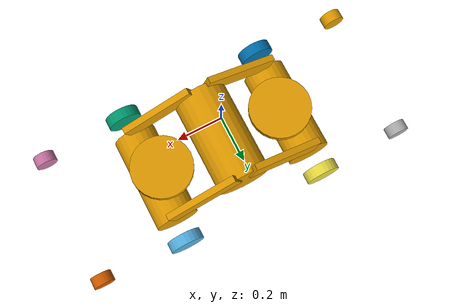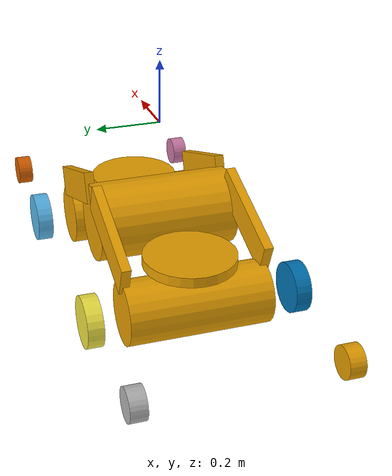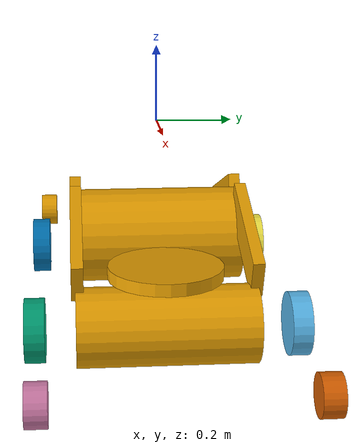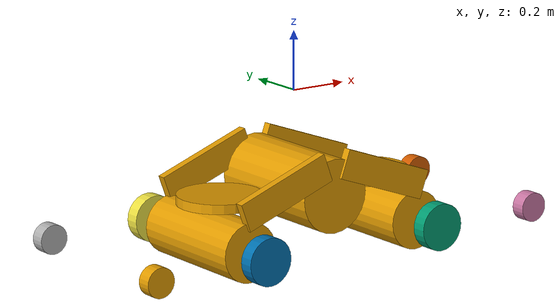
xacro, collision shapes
<?xml version="1.0"?>
<robot xmlns:xacro="http://www.ros.org/wiki/xacro" name="viv">

    <!-- Arguments -->
    <xacro:arg name="robot_namespace" default="/" />

    <xacro:arg name="sim" default="false" />
    <xacro:property name="sim" value="$(arg sim)" />
    <xacro:arg name="spawn_d435" default="false" />
    <xacro:arg name="spawn_velodyne" default="false" />
    <xacro:property name="spawn_d435" value="$(arg spawn_d435)" />
    <xacro:property name="spawn_velodyne" value="$(arg spawn_velodyne)" />

    <xacro:include filename="$(find viv_description)/urdf/viv_description_no_ros_control.urdf.xacro" />

    <xacro:if value="${sim}">
      <gazebo>
        <plugin name="gazebo_ros_control" filename="libgazebo_ros_control.so">
          <robotNamespace>$(arg robot_namespace)</robotNamespace>
        </plugin>
      </gazebo>
    </xacro:if>

    <xacro:if value="${spawn_d435}">
      <xacro:include filename="$(find d435_description)/urdf/d435.xacro" />

      <joint name="front_camera_joint" type="fixed">
        <parent link="viv_base"/>
        <child link="camera_link"/>
        <origin xyz="${-0.23 + 0.6} 0.2 0.35" rpy="0 0 ${pi/2}" />
      </joint>

      <link name="camera_holder_link"/>

      <joint name="camera_holder_joint" type="fixed">
        <parent link="viv_base"/>
        <child link="camera_holder_link"/>
        <origin xyz="0.0 0.0 0.1" rpy="0 0 0" />
      </joint>
    </xacro:if>

    <xacro:if value="${spawn_velodyne}">
      <xacro:include filename="$(find velodyne_description)/urdf/VLP-16.urdf.xacro" />
      <xacro:VLP-16 parent="viv_base" name="/rslidar" topic="/rslidar_points" hz="10" samples="440" gpu="false">
        <origin xyz="0 0 0.4" rpy="0 0 0" />
      </xacro:VLP-16>

    </xacro:if>
</robot>

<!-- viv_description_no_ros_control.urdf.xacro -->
<robot xmlns:xacro="http://www.ros.org/wiki/xacro" name="viv">
    <xacro:property name="M_PI" value="3.1415926535897931" />

    <xacro:arg name="robot_namespace" default="/" />
    <xacro:arg name="sim" default="true" />
    <xacro:property name="sim" value="$(arg sim)" />
    <xacro:arg name="spawn_d435" default="true" />
    <xacro:property name="spawn_d435" value="$(arg spawn_d435)" />
    <!--xacro:property name="wheel_radius" value="1" /-->

    <xacro:if value="${sim}">
      <xacro:property name="wheel_radius" value="0.14" />
    </xacro:if>
    <xacro:unless value="${sim}">
      <xacro:property name="wheel_radius" value="0.08" />
    </xacro:unless>

    <link name="viv_base" >
      <visual>
        <origin xyz="0.0 0 -0.05" rpy="0 0 0" />
        <geometry>
          <mesh filename="package://viv_description/meshes/viv_new_model.dae" />
        </geometry>
      </visual>

      <!-- collisions -->

      <!--three main cylinders-->
      <collision>
        <origin xyz="0.34 0 0.1" rpy="1.57079 0 0" />
        <geometry>
          <cylinder radius="0.1" length="0.45"/>
        </geometry>
      </collision>
      <collision>
        <origin xyz="-0.34 0 0.1" rpy="1.57079 0 0" />
        <geometry>
          <cylinder radius="0.1" length="0.45"/>
        </geometry>
      </collision>
      <collision>
        <origin xyz="0 0 0.235" rpy="1.57079 0 0" />
        <geometry>
          <cylinder radius="0.125" length="0.45"/>
        </geometry>
      </collision>
      <!--mounting cylinders-->
      <collision>
        <origin xyz="-0.3 0 0.228" rpy="0 0 0" />
        <geometry>
          <cylinder radius="0.145" length="0.032"/>
        </geometry>
      </collision>
      <collision>
        <origin xyz="0.3 0 0.228" rpy="0 0 0" />
        <geometry>
          <cylinder radius="0.145" length="0.032"/>
        </geometry>
      </collision>
      <!--side bars-->
      <collision>
        <origin xyz="0.2 -0.22 0.28" rpy="1.57079 0.349 0" />
        <geometry>
          <box size="0.35 0.1 0.03"/>
        </geometry>
      </collision>
      <collision>
        <origin xyz="0.2 0.22 0.28" rpy="1.57079 0.349 0" />
        <geometry>
          <box size="0.35 0.1 0.03"/>
        </geometry>
      </collision>
      <collision>
        <origin xyz="-0.2 -0.22 0.28" rpy="1.57079 -0.349 0" />
        <geometry>
          <box size="0.35 0.1 0.03"/>
        </geometry>
      </collision>
      <collision>
        <origin xyz="-0.2 0.22 0.28" rpy="1.57079 -0.349 0" />
        <geometry>
          <box size="0.35 0.1 0.03"/>
        </geometry>
      </collision>

      <inertial>
        <origin xyz="0 0 0.2"/>
        <mass value="50"/>
        <inertia ixx="1.0" ixy="0.0" ixz="0.0"
                iyy="1.0" iyz="0.0"
                izz="1.0" />
      </inertial>
    </link>

    <!--wheels-->
    <link name="viv_wheel_front_left" >
      <collision>
        <origin xyz="0.0 0.0 0.0" rpy="1.57079 0 0" />
        <geometry>
          <cylinder radius="${wheel_radius}" length="0.05"/>
        </geometry>
      </collision>
      <inertial>
        <origin xyz="0 0 0"/>
        <mass value="10"/>
        <inertia ixx="1.0" ixy="0.0" ixz="0.0"
                iyy="1.0" iyz="0.0"
                izz="1.0" />
      </inertial>
    </link>

    <link name="viv_wheel_front_right" >
      <collision>
        <origin xyz="0.0 0.0 0.0" rpy="1.57079 0 0" />
        <geometry>
          <cylinder radius="${wheel_radius}" length="0.05"/>
        </geometry>
      </collision>
      <inertial>
        <origin xyz="0 0 0"/>
        <mass value="10"/>
        <inertia ixx="1.0" ixy="0.0" ixz="0.0"
                iyy="1.0" iyz="0.0"
                izz="1.0" />
      </inertial>
    </link>

     <link name="viv_wheel_rear_left" >
      <collision>
        <origin xyz="0.0 0.0 0.0" rpy="1.57079 0 0" />
        <geometry>
          <cylinder radius="${wheel_radius}" length="0.05"/>
        </geometry>
      </collision>
      <inertial>
        <origin xyz="0 0 0"/>
        <mass value="10"/>
        <inertia ixx="1.0" ixy="0.0" ixz="0.0"
                iyy="1.0" iyz="0.0"
                izz="1.0" />
      </inertial>
    </link>

    <link name="viv_wheel_rear_right" >
      <collision>
        <origin xyz="0.0 0.0 0.0" rpy="1.57079 0 0" />
        <geometry>
          <cylinder radius="${wheel_radius}" length="0.05"/>
        </geometry>
      </collision>
      <inertial>
        <origin xyz="0 0 0"/>
        <mass value="10"/>
        <inertia ixx="1.0" ixy="0.0" ixz="0.0"
                iyy="1.0" iyz="0.0"
                izz="1.0" />
      </inertial>
    </link>

    <joint name="viv_wheel_front_left_joint" type="continuous">
			<parent link="viv_base"/>
			<child link="viv_wheel_front_left"/>
      <origin xyz="0.35 0.325 0.1" rpy="0 0 0" />
			<axis xyz="0 1 0" rpy="0 0 0"/>
		</joint>
    <joint name="viv_wheel_front_right_joint" type="continuous">
			<parent link="viv_base"/>
			<child link="viv_wheel_front_right"/>
      <origin xyz="0.35 -0.325 0.1" rpy="0 0 0" />
			<axis xyz="0 1 0" rpy="0 0 0"/>
		</joint>
    <joint name="viv_wheel_rear_left_joint" type="continuous">
			<parent link="viv_base"/>
			<child link="viv_wheel_rear_left"/>
      <origin xyz="-0.35 0.325 0.1" rpy="0 0 0" />
			<axis xyz="0 1 0" rpy="0 0 0"/>
		</joint>
    <joint name="viv_wheel_rear_right_joint" type="continuous">
			<parent link="viv_base"/>
			<child link="viv_wheel_rear_right"/>
      <origin xyz="-0.35 -0.325 0.1" rpy="0 0 0" />
			<axis xyz="0 1 0" rpy="0 0 0"/>
		</joint>

		<transmission name="viv_wheel_front_left_trans" type="SimpleTransmission">
			<type>transmission_interface/SimpleTransmission</type>
			<actuator name="viv_wheel_front_left_motor">
				<mechanicalReduction>1</mechanicalReduction>
			</actuator>
			<joint name="viv_wheel_front_left_joint">
				<hardwareInterface>hardware_interface/VelocityJointInterface</hardwareInterface>
			</joint>
		</transmission>
		<transmission name="viv_wheel_front_right_trans" type="SimpleTransmission">
			<type>transmission_interface/SimpleTransmission</type>
			<actuator name="viv_wheel_front_right_motor">
				<mechanicalReduction>1</mechanicalReduction>
			</actuator>
			<joint name="viv_wheel_front_right_joint">
				<hardwareInterface>hardware_interface/VelocityJointInterface</hardwareInterface>
			</joint>
		</transmission>
		<transmission name="viv_wheel_rear_left_trans" type="SimpleTransmission">
			<type>transmission_interface/SimpleTransmission</type>
			<actuator name="viv_wheel_rear_left_motor">
				<mechanicalReduction>1</mechanicalReduction>
			</actuator>
			<joint name="viv_wheel_rear_left_joint">
				<hardwareInterface>hardware_interface/VelocityJointInterface</hardwareInterface>
			</joint>
		</transmission>
		<transmission name="viv_wheel_rear_right_trans" type="SimpleTransmission">
			<type>transmission_interface/SimpleTransmission</type>
			<actuator name="viv_wheel_rear_right_motor">
				<mechanicalReduction>1</mechanicalReduction>
			</actuator>
			<joint name="viv_wheel_rear_right_joint">
				<hardwareInterface>hardware_interface/VelocityJointInterface</hardwareInterface>
			</joint>
		</transmission>

    <!--tracks-->
    <link name="viv_track_1" >
      <collision>
        <origin xyz="-0.42 -0.04 -0.0" rpy="1.57079 0 0" />
        <geometry>
          <cylinder radius="0.05" length="0.05"/>
        </geometry>
      </collision>
    </link>
    <link name="viv_track_2" >
      <collision>
        <origin xyz="-0.42 -0.04 -0.0" rpy="1.57079 0 0" />
        <geometry>
          <cylinder radius="0.05" length="0.05"/>
        </geometry>
      </collision>
    </link>
     <link name="viv_track_3" >
      <collision>
        <origin xyz="-0.42 -0.04 -0.0" rpy="1.57079 0 0" />
        <geometry>
          <cylinder radius="0.05" length="0.05"/>
        </geometry>
      </collision>
    </link>
    <link name="viv_track_4" >
      <collision>
        <origin xyz="-0.42 -0.04 -0.0" rpy="1.57079 0 0" />
        <geometry>
          <cylinder radius="0.05" length="0.05"/>
        </geometry>
      </collision>
    </link>

    <joint name="viv_track_1_mount_joint" type="fixed">
      <parent link="viv_base"/>
      <child link="viv_track_1"/>
      <origin xyz="0.34 0.27 0.1" rpy="0 0 3.14159" />
    </joint>
    <joint name="viv_track_2_mount_joint" type="fixed">
      <parent link="viv_base"/>
      <child link="viv_track_2"/>
      <origin xyz="0.34 -0.27 0.1" rpy="3.14159 0 3.14159" />
    </joint>
    <joint name="viv_track_3_mount_joint" type="fixed">
      <parent link="viv_base"/>
      <child link="viv_track_3"/>
      <origin xyz="-0.34 0.27 0.1" rpy="3.14159 0 0" />
    </joint>
    <joint name="viv_track_4_mount_joint" type="fixed">
      <parent link="viv_base"/>
      <child link="viv_track_4"/>
      <origin xyz="-0.34 -0.27 0.1" rpy="0 0 0" />
    </joint>

    <gazebo reference="viv_wheel_front_left">
			<mu1 value="2.0"/>
			<mu2 value="1.0"/>
			<kp value="10000000.0" />
			<kd value="1.0" />
			<fdir1 value="1 0 0"/>
		</gazebo>
    <gazebo reference="viv_wheel_front_right">
			<mu1 value="2.0"/>
			<mu2 value="1.0"/>
			<kp value="10000000.0" />
			<kd value="1.0" />
			<fdir1 value="1 0 0"/>
		</gazebo>
    <gazebo reference="viv_wheel_rear_left">
			<mu1 value="2.0"/>
			<mu2 value="1.0"/>
			<kp value="10000000.0" />
			<kd value="1.0" />
			<fdir1 value="1 0 0"/>
		</gazebo>
    <gazebo reference="viv_wheel_rear_right">
			<mu1 value="2.0"/>
			<mu2 value="1.0"/>
			<kp value="10000000.0" />
			<kd value="1.0" />
			<fdir1 value="1 0 0"/>
		</gazebo>
    <link name="rslidar"/>

    <joint name="viv_rslidar_mount" type="fixed">
      <parent link="viv_base"/>
      <child link="rslidar"/>
      <origin xyz="0 0 0.5" rpy="0 0 0" />
    </joint>

    <link name="d435_camera_link"/>

    <joint name="d435_mount" type="fixed">
      <parent link="viv_base"/>
      <child link="d435_camera_link"/>
      <origin xyz="${-0.23 + 0.6} -0.2 0.35" rpy="0 0 0" />
    </joint>

    <link name="base_link"/>

    <joint name="mavros_base_link_mount" type="fixed">
      <parent link="base_link"/>
      <child link="viv_base"/>
      <origin xyz="0 0 -0.55" rpy="0 0 0" />
    </joint>

    <!-- maka! -->

</robot>
